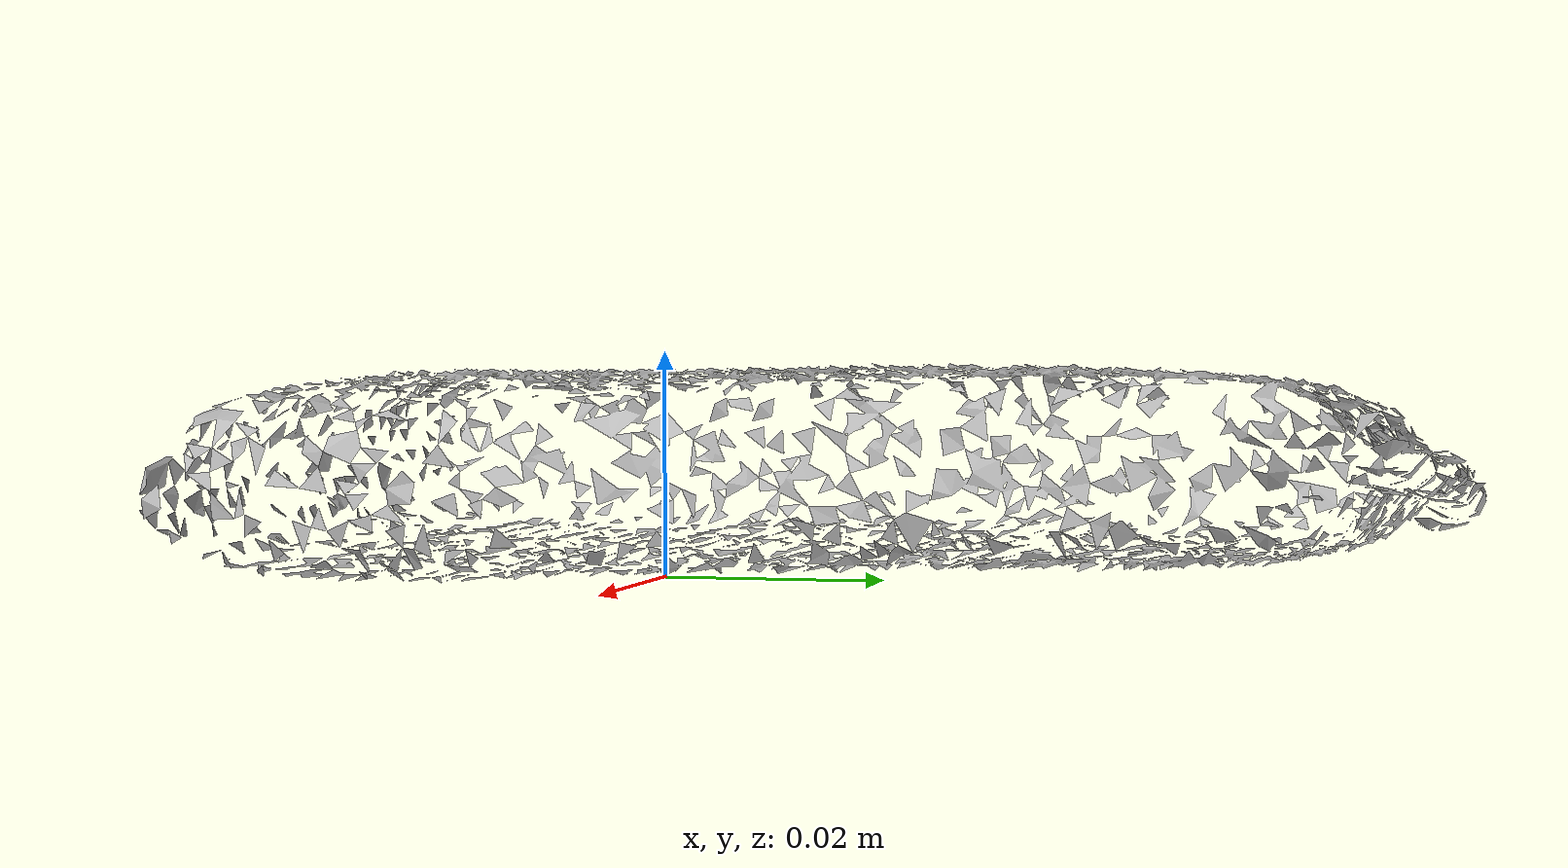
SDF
<?xml version='1.0'?>
<sdf version="1.4">
  <model name="sponge">
    <static>false</static>
    <link name="link">
      <inertial>
        <pose>-0.015842356573766914 0.011520562220217976 0.00937252508059704 -0.9824934086702146 1.5523706661387424 0.5776306754619863</pose>
        <mass>0.00011574257606853668</mass>
        <inertia>
          <ixx>1.4790695935686624e-07</ixx>
          <ixy>6.546512016924604e-26</ixy>
          <ixz>-1.352044653776286e-23</ixz>
          <iyy>1.0220649167865078e-07</iyy>
          <iyz>9.375642998693167e-26</iyz>
          <izz>5.040066218025438e-08</izz>
        </inertia>
      </inertial>
      <collision name="collision">
        <geometry>
          <mesh>
            <!-- Use a downsampled mesh for collisions -->
            <uri>model://026_sponge/downsampled.obj</uri>
	        </mesh>
        </geometry>
        <surface>
      </surface>
      </collision>
      <visual name="visual">
        <geometry>
          <mesh>
            <uri>model://026_sponge/google_16k/textured.obj</uri>
	        </mesh>
        </geometry>
        <material>
          <script>
            <uri>model://026_sponge/sponge.material</uri>
            <name>sponge</name>
          </script>
        </material>
      </visual>
    </link>
  </model>
</sdf>
